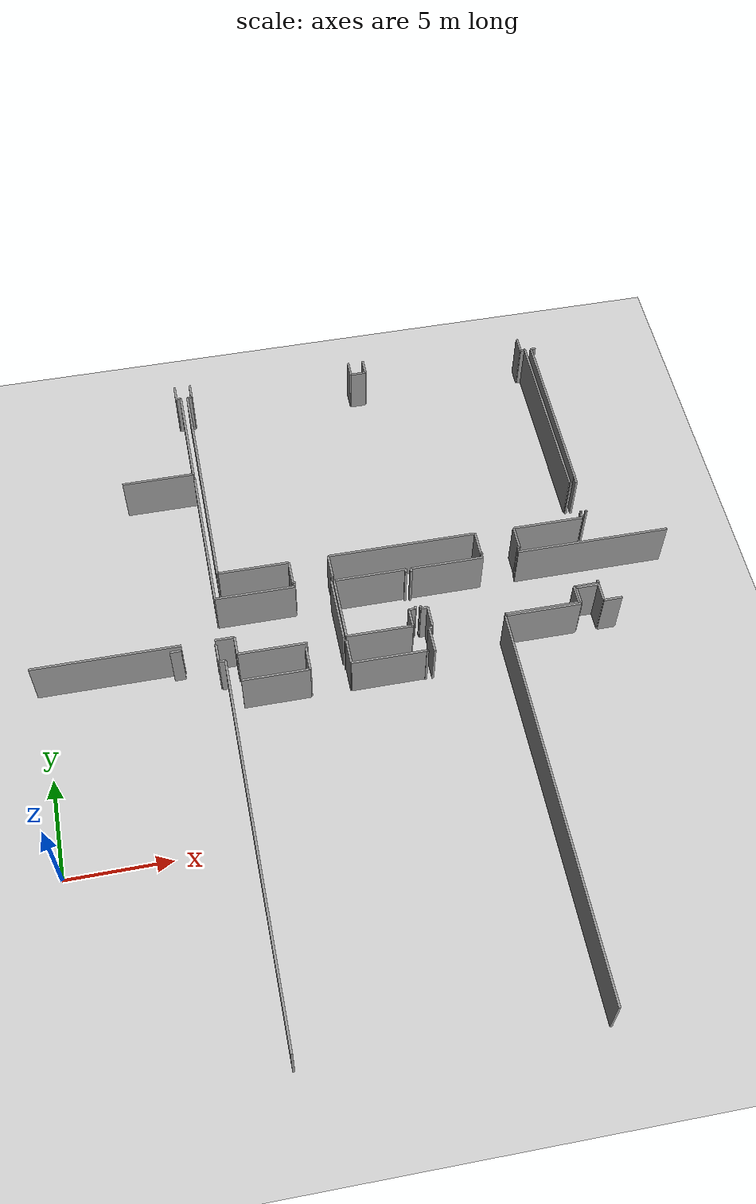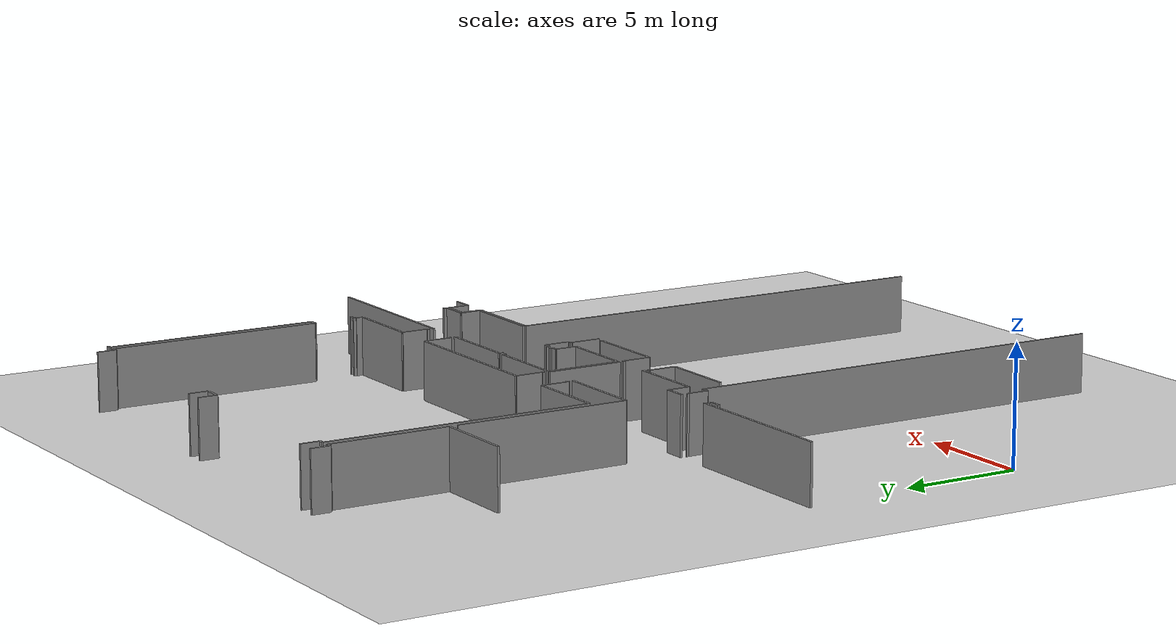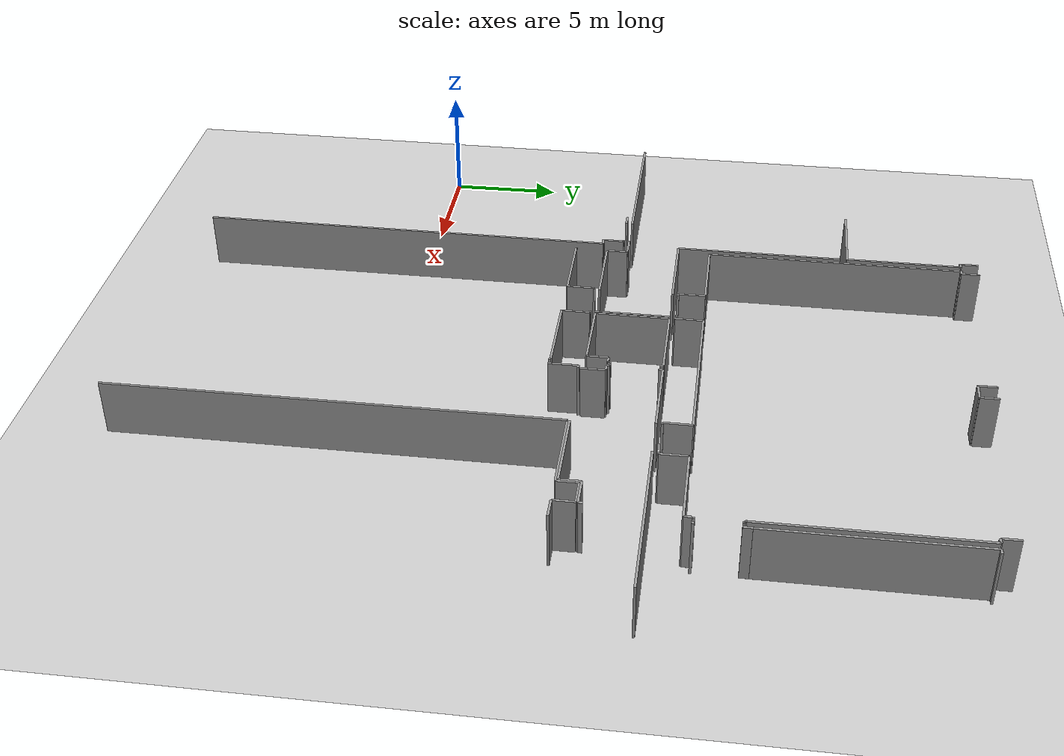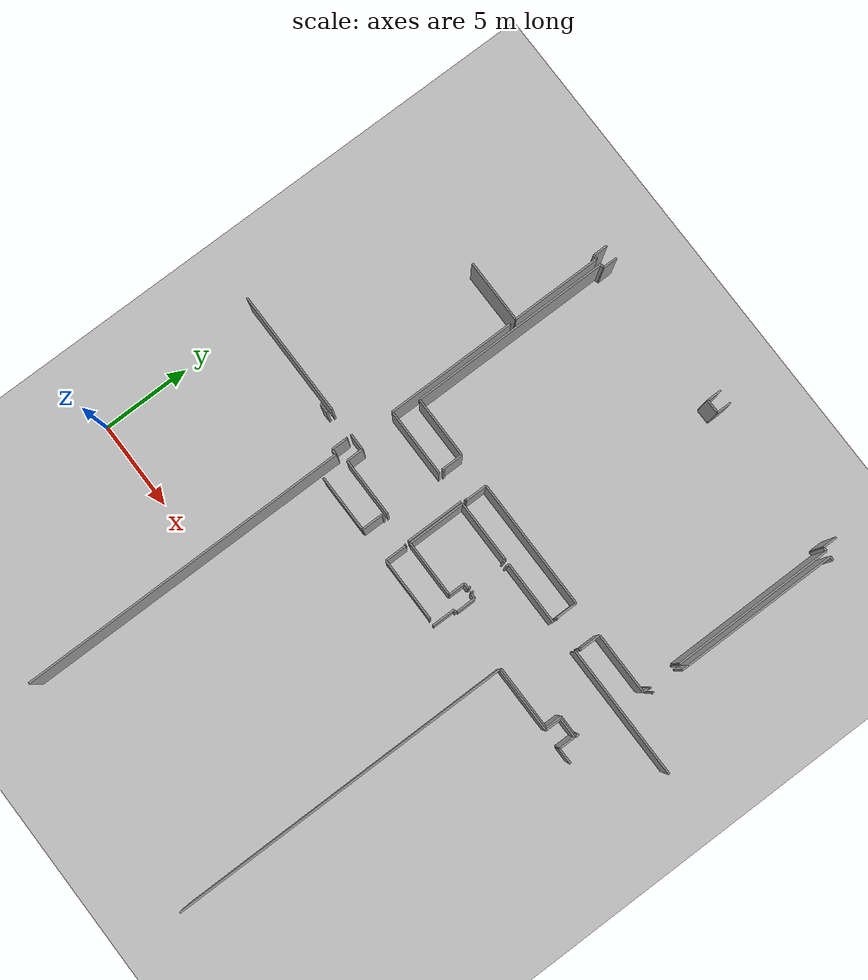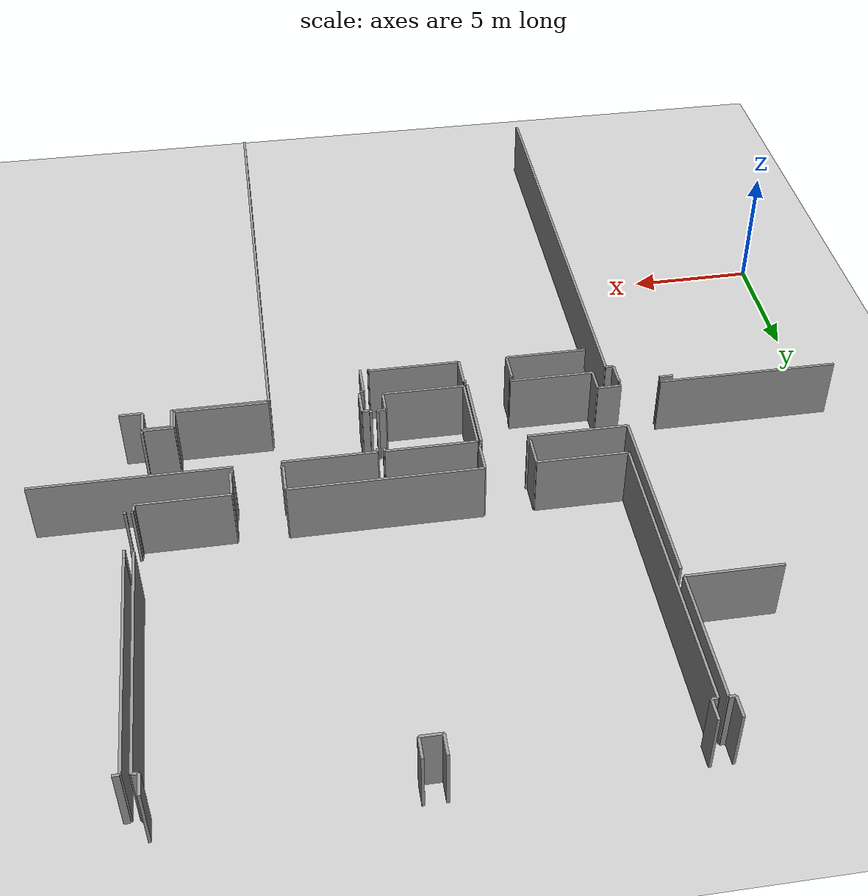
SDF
<sdf version="1.6">
 <world name="default">
  <model name="ground_plane">
   <static>1</static>
   <link name="link">
    <collision name="collision">
     <geometry><plane><normal>0 0 1</normal><size>100 100</size></plane></geometry>
     <surface><friction><ode><mu>100</mu><mu2>50</mu2></ode></friction></surface>
    </collision>
    <visual name="visual">
     <cast_shadows>0</cast_shadows>
     <geometry><plane><normal>0 0 1</normal><size>100 100</size></plane></geometry>
     <material>
      <script><uri>file://media/materials/scripts/gazebo.material</uri><name>Gazebo/Grey</name></script>
     </material>
    </visual>
   </link>
  </model>
  <model name="50045368">
   <static>1</static>
   <link name="Wall_185">
    <collision name="Wall_185_Collision">
     <geometry><box><size>7.38195679797 0.1 2.5</size></box></geometry>
     <pose>3.69097839898 0 1.25 0 0 0</pose>
    </collision>
    <visual name="Wall_185_Visual">
     <pose>3.69097839898 0 1.25 0 0 0</pose>
     <geometry><box><size>7.38195679797 0.1 2.5</size></box></geometry>
     <material>
      <script><uri>file://media/materials/scripts/gazebo.material</uri><name>Gazebo/Grey</name></script>
      <ambient>1 1 1 1</ambient>
     </material>
    </visual>
    <pose>61.4377382465 -6.29110546379 0 0 0 -1.57079632679</pose>
   </link>
   <link name="Wall_186">
    <collision name="Wall_186_Collision">
     <geometry><box><size>3.87318932656 0.1 2.5</size></box></geometry>
     <pose>1.93659466328 0 1.25 0 0 0</pose>
    </collision>
    <visual name="Wall_186_Visual">
     <pose>1.93659466328 0 1.25 0 0 0</pose>
     <geometry><box><size>3.87318932656 0.1 2.5</size></box></geometry>
     <material>
      <script><uri>file://media/materials/scripts/gazebo.material</uri><name>Gazebo/Grey</name></script>
      <ambient>1 1 1 1</ambient>
     </material>
    </visual>
    <pose>61.4377382465 -13.6730622618 0 0 0 0.0</pose>
   </link>
   <link name="Wall_187">
    <collision name="Wall_187_Collision">
     <geometry><box><size>3.26124523507 0.1 2.5</size></box></geometry>
     <pose>1.63062261753 0 1.25 0 0 0</pose>
    </collision>
    <visual name="Wall_187_Visual">
     <pose>1.63062261753 0 1.25 0 0 0</pose>
     <geometry><box><size>3.26124523507 0.1 2.5</size></box></geometry>
     <material>
      <script><uri>file://media/materials/scripts/gazebo.material</uri><name>Gazebo/Grey</name></script>
      <ambient>1 1 1 1</ambient>
     </material>
    </visual>
    <pose>67.0796696315 -13.6730622618 0 0 0 -1.57079632679</pose>
   </link>
   <link name="Wall_188">
    <collision name="Wall_188_Collision">
     <geometry><box><size>3.30559085133 0.1 2.5</size></box></geometry>
     <pose>1.65279542567 0 1.25 0 0 0</pose>
    </collision>
    <visual name="Wall_188_Visual">
     <pose>1.65279542567 0 1.25 0 0 0</pose>
     <geometry><box><size>3.30559085133 0.1 2.5</size></box></geometry>
     <material>
      <script><uri>file://media/materials/scripts/gazebo.material</uri><name>Gazebo/Grey</name></script>
      <ambient>1 1 1 1</ambient>
     </material>
    </visual>
    <pose>65.3545108005 -16.9343074968 0 0 0 3.14159265359</pose>
   </link>
   <link name="Wall_189">
    <collision name="Wall_189_Collision">
     <geometry><box><size>0.943710292249 0.1 2.5</size></box></geometry>
     <pose>0.471855146125 0 1.25 0 0 0</pose>
    </collision>
    <visual name="Wall_189_Visual">
     <pose>0.471855146125 0 1.25 0 0 0</pose>
     <geometry><box><size>0.943710292249 0.1 2.5</size></box></geometry>
     <material>
      <script><uri>file://media/materials/scripts/gazebo.material</uri><name>Gazebo/Grey</name></script>
      <ambient>1 1 1 1</ambient>
     </material>
    </visual>
    <pose>62.0489199492 -16.9343074968 0 0 0 1.57079632679</pose>
   </link>
   <link name="Wall_190">
    <collision name="Wall_190_Collision">
     <geometry><box><size>0.93710292249 0.1 2.5</size></box></geometry>
     <pose>0.468551461245 0 1.25 0 0 0</pose>
    </collision>
    <visual name="Wall_190_Visual">
     <pose>0.468551461245 0 1.25 0 0 0</pose>
     <geometry><box><size>0.93710292249 0.1 2.5</size></box></geometry>
     <material>
      <script><uri>file://media/materials/scripts/gazebo.material</uri><name>Gazebo/Grey</name></script>
      <ambient>1 1 1 1</ambient>
     </material>
    </visual>
    <pose>62.0489199492 -15.9905972046 0 0 0 3.14159265359</pose>
   </link>
   <link name="Wall_191">
    <collision name="Wall_191_Collision">
     <geometry><box><size>7.10381194409 0.1 2.5</size></box></geometry>
     <pose>3.55190597205 0 1.25 0 0 0</pose>
    </collision>
    <visual name="Wall_191_Visual">
     <pose>3.55190597205 0 1.25 0 0 0</pose>
     <geometry><box><size>7.10381194409 0.1 2.5</size></box></geometry>
     <material>
      <script><uri>file://media/materials/scripts/gazebo.material</uri><name>Gazebo/Grey</name></script>
      <ambient>1 1 1 1</ambient>
     </material>
    </visual>
    <pose>59.5364675985 -15.9905972046 0 0 0 3.14159265359</pose>
   </link>
   <link name="Wall_198">
    <collision name="Wall_198_Collision">
     <geometry><box><size>0.817534942821 0.1 2.5</size></box></geometry>
     <pose>0.40876747141 0 1.25 0 0 0</pose>
    </collision>
    <visual name="Wall_198_Visual">
     <pose>0.40876747141 0 1.25 0 0 0</pose>
     <geometry><box><size>0.817534942821 0.1 2.5</size></box></geometry>
     <material>
      <script><uri>file://media/materials/scripts/gazebo.material</uri><name>Gazebo/Grey</name></script>
      <ambient>1 1 1 1</ambient>
     </material>
    </visual>
    <pose>61.1850063532 -0.00851334180432 0 0 0 -1.57079632679</pose>
   </link>
   <link name="Wall_199">
    <collision name="Wall_199_Collision">
     <geometry><box><size>0.231003811944 0.1 2.5</size></box></geometry>
     <pose>0.115501905972 0 1.25 0 0 0</pose>
    </collision>
    <visual name="Wall_199_Visual">
     <pose>0.115501905972 0 1.25 0 0 0</pose>
     <geometry><box><size>0.231003811944 0.1 2.5</size></box></geometry>
     <material>
      <script><uri>file://media/materials/scripts/gazebo.material</uri><name>Gazebo/Grey</name></script>
      <ambient>1 1 1 1</ambient>
     </material>
    </visual>
    <pose>61.1850063532 -0.826048284625 0 0 0 0.0</pose>
   </link>
   <link name="Wall_200">
    <collision name="Wall_200_Collision">
     <geometry><box><size>5.11207115629 0.1 2.5</size></box></geometry>
     <pose>2.55603557814 0 1.25 0 0 0</pose>
    </collision>
    <visual name="Wall_200_Visual">
     <pose>2.55603557814 0 1.25 0 0 0</pose>
     <geometry><box><size>5.11207115629 0.1 2.5</size></box></geometry>
     <material>
      <script><uri>file://media/materials/scripts/gazebo.material</uri><name>Gazebo/Grey</name></script>
      <ambient>1 1 1 1</ambient>
     </material>
    </visual>
    <pose>61.4160101652 -0.826048284625 0 0 0 -1.57079632679</pose>
   </link>
   <link name="Wall_201">
    <collision name="Wall_201_Collision">
     <geometry><box><size>3.57560355781 0.1 2.5</size></box></geometry>
     <pose>1.78780177891 0 1.25 0 0 0</pose>
    </collision>
    <visual name="Wall_201_Visual">
     <pose>1.78780177891 0 1.25 0 0 0</pose>
     <geometry><box><size>3.57560355781 0.1 2.5</size></box></geometry>
     <material>
      <script><uri>file://media/materials/scripts/gazebo.material</uri><name>Gazebo/Grey</name></script>
      <ambient>1 1 1 1</ambient>
     </material>
    </visual>
    <pose>61.4160101652 -5.93811944091 0 0 0 3.14159265359</pose>
   </link>
   <link name="Wall_210">
    <collision name="Wall_210_Collision">
     <geometry><box><size>0.543202033037 0.1 2.5</size></box></geometry>
     <pose>0.271601016518 0 1.25 0 0 0</pose>
    </collision>
    <visual name="Wall_210_Visual">
     <pose>0.271601016518 0 1.25 0 0 0</pose>
     <geometry><box><size>0.543202033037 0.1 2.5</size></box></geometry>
     <material>
      <script><uri>file://media/materials/scripts/gazebo.material</uri><name>Gazebo/Grey</name></script>
      <ambient>1 1 1 1</ambient>
     </material>
    </visual>
    <pose>58.9613722999 -16.2711562897 0 0 0 0.0</pose>
   </link>
   <link name="Wall_211">
    <collision name="Wall_211_Collision">
     <geometry><box><size>0.0658195679797 0.1 2.5</size></box></geometry>
     <pose>0.0329097839898 0 1.25 0 0 0</pose>
    </collision>
    <visual name="Wall_211_Visual">
     <pose>0.0329097839898 0 1.25 0 0 0</pose>
     <geometry><box><size>0.0658195679797 0.1 2.5</size></box></geometry>
     <material>
      <script><uri>file://media/materials/scripts/gazebo.material</uri><name>Gazebo/Grey</name></script>
      <ambient>1 1 1 1</ambient>
     </material>
    </visual>
    <pose>61.0752223634 -16.2711562897 0 0 0 0.0</pose>
   </link>
   <link name="Wall_212">
    <collision name="Wall_212_Collision">
     <geometry><box><size>0.919695044473 0.1 2.5</size></box></geometry>
     <pose>0.459847522236 0 1.25 0 0 0</pose>
    </collision>
    <visual name="Wall_212_Visual">
     <pose>0.459847522236 0 1.25 0 0 0</pose>
     <geometry><box><size>0.919695044473 0.1 2.5</size></box></geometry>
     <material>
      <script><uri>file://media/materials/scripts/gazebo.material</uri><name>Gazebo/Grey</name></script>
      <ambient>1 1 1 1</ambient>
     </material>
    </visual>
    <pose>61.1410419314 -16.2711562897 0 0 0 -1.57079632679</pose>
   </link>
   <link name="Wall_213">
    <collision name="Wall_213_Collision">
     <geometry><box><size>0.315374841169 0.1 2.5</size></box></geometry>
     <pose>0.157687420584 0 1.25 0 0 0</pose>
    </collision>
    <visual name="Wall_213_Visual">
     <pose>0.157687420584 0 1.25 0 0 0</pose>
     <geometry><box><size>0.315374841169 0.1 2.5</size></box></geometry>
     <material>
      <script><uri>file://media/materials/scripts/gazebo.material</uri><name>Gazebo/Grey</name></script>
      <ambient>1 1 1 1</ambient>
     </material>
    </visual>
    <pose>61.1410419314 -17.1908513342 0 0 0 0.0</pose>
   </link>
   <link name="Wall_214">
    <collision name="Wall_214_Collision">
     <geometry><box><size>18.7362134689 0.1 2.5</size></box></geometry>
     <pose>9.36810673443 0 1.25 0 0 0</pose>
    </collision>
    <visual name="Wall_214_Visual">
     <pose>9.36810673443 0 1.25 0 0 0</pose>
     <geometry><box><size>18.7362134689 0.1 2.5</size></box></geometry>
     <material>
      <script><uri>file://media/materials/scripts/gazebo.material</uri><name>Gazebo/Grey</name></script>
      <ambient>1 1 1 1</ambient>
     </material>
    </visual>
    <pose>61.4564167726 -17.1908513342 0 0 0 -1.57079632679</pose>
   </link>
   <link name="Wall_220">
    <collision name="Wall_220_Collision">
     <geometry><box><size>3.22744599746 0.1 2.5</size></box></geometry>
     <pose>1.61372299873 0 1.25 0 0 0</pose>
    </collision>
    <visual name="Wall_220_Visual">
     <pose>1.61372299873 0 1.25 0 0 0</pose>
     <geometry><box><size>3.22744599746 0.1 2.5</size></box></geometry>
     <material>
      <script><uri>file://media/materials/scripts/gazebo.material</uri><name>Gazebo/Grey</name></script>
      <ambient>1 1 1 1</ambient>
     </material>
    </visual>
    <pose>62.0162642948 -18.3811944091 0 0 0 0.0</pose>
   </link>
   <link name="Wall_221">
    <collision name="Wall_221_Collision">
     <geometry><box><size>1.21283354511 0.1 2.5</size></box></geometry>
     <pose>0.606416772554 0 1.25 0 0 0</pose>
    </collision>
    <visual name="Wall_221_Visual">
     <pose>0.606416772554 0 1.25 0 0 0</pose>
     <geometry><box><size>1.21283354511 0.1 2.5</size></box></geometry>
     <material>
      <script><uri>file://media/materials/scripts/gazebo.material</uri><name>Gazebo/Grey</name></script>
      <ambient>1 1 1 1</ambient>
     </material>
    </visual>
    <pose>65.2437102922 -18.3811944091 0 0 0 1.57079632679</pose>
   </link>
   <link name="Wall_222">
    <collision name="Wall_222_Collision">
     <geometry><box><size>0.0955527318933 0.1 2.5</size></box></geometry>
     <pose>0.0477763659466 0 1.25 0 0 0</pose>
    </collision>
    <visual name="Wall_222_Visual">
     <pose>0.0477763659466 0 1.25 0 0 0</pose>
     <geometry><box><size>0.0955527318933 0.1 2.5</size></box></geometry>
     <material>
      <script><uri>file://media/materials/scripts/gazebo.material</uri><name>Gazebo/Grey</name></script>
      <ambient>1 1 1 1</ambient>
     </material>
    </visual>
    <pose>65.2437102922 -17.168360864 0 0 0 0.0</pose>
   </link>
   <link name="Wall_223">
    <collision name="Wall_223_Collision">
     <geometry><box><size>0.0983481575604 0.1 2.5</size></box></geometry>
     <pose>0.0491740787802 0 1.25 0 0 0</pose>
    </collision>
    <visual name="Wall_223_Visual">
     <pose>0.0491740787802 0 1.25 0 0 0</pose>
     <geometry><box><size>0.0983481575604 0.1 2.5</size></box></geometry>
     <material>
      <script><uri>file://media/materials/scripts/gazebo.material</uri><name>Gazebo/Grey</name></script>
      <ambient>1 1 1 1</ambient>
     </material>
    </visual>
    <pose>67.0744599746 -17.168360864 0 0 0 0.0</pose>
   </link>
   <link name="Wall_224">
    <collision name="Wall_224_Collision">
     <geometry><box><size>1.22287166455 0.1 2.5</size></box></geometry>
     <pose>0.611435832274 0 1.25 0 0 0</pose>
    </collision>
    <visual name="Wall_224_Visual">
     <pose>0.611435832274 0 1.25 0 0 0</pose>
     <geometry><box><size>1.22287166455 0.1 2.5</size></box></geometry>
     <material>
      <script><uri>file://media/materials/scripts/gazebo.material</uri><name>Gazebo/Grey</name></script>
      <ambient>1 1 1 1</ambient>
     </material>
    </visual>
    <pose>67.1728081321 -17.168360864 0 0 0 -1.57079632679</pose>
   </link>
   <link name="Wall_225">
    <collision name="Wall_225_Collision">
     <geometry><box><size>3.61207115629 0.1 2.5</size></box></geometry>
     <pose>1.80603557814 0 1.25 0 0 0</pose>
    </collision>
    <visual name="Wall_225_Visual">
     <pose>1.80603557814 0 1.25 0 0 0</pose>
     <geometry><box><size>3.61207115629 0.1 2.5</size></box></geometry>
     <material>
      <script><uri>file://media/materials/scripts/gazebo.material</uri><name>Gazebo/Grey</name></script>
      <ambient>1 1 1 1</ambient>
     </material>
    </visual>
    <pose>67.1728081321 -18.3912325286 0 0 0 0.0</pose>
   </link>
   <link name="Wall_226">
    <collision name="Wall_226_Collision">
     <geometry><box><size>0.0772554002541 0.1 2.5</size></box></geometry>
     <pose>0.0386277001271 0 1.25 0 0 0</pose>
    </collision>
    <visual name="Wall_226_Visual">
     <pose>0.0386277001271 0 1.25 0 0 0</pose>
     <geometry><box><size>0.0772554002541 0.1 2.5</size></box></geometry>
     <material>
      <script><uri>file://media/materials/scripts/gazebo.material</uri><name>Gazebo/Grey</name></script>
      <ambient>1 1 1 1</ambient>
     </material>
    </visual>
    <pose>70.7848792884 -18.3912325286 0 0 0 -1.57079632679</pose>
   </link>
   <link name="Wall_234">
    <collision name="Wall_234_Collision">
     <geometry><box><size>0.0315120711563 0.1 2.5</size></box></geometry>
     <pose>0.0157560355781 0 1.25 0 0 0</pose>
    </collision>
    <visual name="Wall_234_Visual">
     <pose>0.0157560355781 0 1.25 0 0 0</pose>
     <geometry><box><size>0.0315120711563 0.1 2.5</size></box></geometry>
     <material>
      <script><uri>file://media/materials/scripts/gazebo.material</uri><name>Gazebo/Grey</name></script>
      <ambient>1 1 1 1</ambient>
     </material>
    </visual>
    <pose>61.7945362135 -12.2219822109 0 0 0 3.14159265359</pose>
   </link>
   <link name="Wall_235">
    <collision name="Wall_235_Collision">
     <geometry><box><size>11.3945362135 0.1 2.5</size></box></geometry>
     <pose>5.69726810673 0 1.25 0 0 0</pose>
    </collision>
    <visual name="Wall_235_Visual">
     <pose>5.69726810673 0 1.25 0 0 0</pose>
     <geometry><box><size>11.3945362135 0.1 2.5</size></box></geometry>
     <material>
      <script><uri>file://media/materials/scripts/gazebo.material</uri><name>Gazebo/Grey</name></script>
      <ambient>1 1 1 1</ambient>
     </material>
    </visual>
    <pose>61.7630241423 -12.2219822109 0 0 0 1.57079632679</pose>
   </link>
   <link name="Wall_236">
    <collision name="Wall_236_Collision">
     <geometry><box><size>0.219949174079 0.1 2.5</size></box></geometry>
     <pose>0.109974587039 0 1.25 0 0 0</pose>
    </collision>
    <visual name="Wall_236_Visual">
     <pose>0.109974587039 0 1.25 0 0 0</pose>
     <geometry><box><size>0.219949174079 0.1 2.5</size></box></geometry>
     <material>
      <script><uri>file://media/materials/scripts/gazebo.material</uri><name>Gazebo/Grey</name></script>
      <ambient>1 1 1 1</ambient>
     </material>
    </visual>
    <pose>61.7630241423 -0.827445997459 0 0 0 0.0</pose>
   </link>
   <link name="Wall_237">
    <collision name="Wall_237_Collision">
     <geometry><box><size>0.822363405337 0.1 2.5</size></box></geometry>
     <pose>0.411181702668 0 1.25 0 0 0</pose>
    </collision>
    <visual name="Wall_237_Visual">
     <pose>0.411181702668 0 1.25 0 0 0</pose>
     <geometry><box><size>0.822363405337 0.1 2.5</size></box></geometry>
     <material>
      <script><uri>file://media/materials/scripts/gazebo.material</uri><name>Gazebo/Grey</name></script>
      <ambient>1 1 1 1</ambient>
     </material>
    </visual>
    <pose>61.9829733164 -0.827445997459 0 0 0 1.57079632679</pose>
   </link>
   <link name="Wall_238">
    <collision name="Wall_238_Collision">
     <geometry><box><size>0.814104193138 0.1 2.5</size></box></geometry>
     <pose>0.407052096569 0 1.25 0 0 0</pose>
    </collision>
    <visual name="Wall_238_Visual">
     <pose>0.407052096569 0 1.25 0 0 0</pose>
     <geometry><box><size>0.814104193138 0.1 2.5</size></box></geometry>
     <material>
      <script><uri>file://media/materials/scripts/gazebo.material</uri><name>Gazebo/Grey</name></script>
      <ambient>1 1 1 1</ambient>
     </material>
    </visual>
    <pose>70.4462515883 -0.00508259212198 0 0 0 -1.57079632679</pose>
   </link>
   <link name="Wall_239">
    <collision name="Wall_239_Collision">
     <geometry><box><size>0.782973316391 0.1 2.5</size></box></geometry>
     <pose>0.391486658196 0 1.25 0 0 0</pose>
    </collision>
    <visual name="Wall_239_Visual">
     <pose>0.391486658196 0 1.25 0 0 0</pose>
     <geometry><box><size>0.782973316391 0.1 2.5</size></box></geometry>
     <material>
      <script><uri>file://media/materials/scripts/gazebo.material</uri><name>Gazebo/Grey</name></script>
      <ambient>1 1 1 1</ambient>
     </material>
    </visual>
    <pose>70.4462515883 -0.81918678526 0 0 0 0.0</pose>
   </link>
   <link name="Wall_240">
    <collision name="Wall_240_Collision">
     <geometry><box><size>0.818297331639 0.1 2.5</size></box></geometry>
     <pose>0.40914866582 0 1.25 0 0 0</pose>
    </collision>
    <visual name="Wall_240_Visual">
     <pose>0.40914866582 0 1.25 0 0 0</pose>
     <geometry><box><size>0.818297331639 0.1 2.5</size></box></geometry>
     <material>
      <script><uri>file://media/materials/scripts/gazebo.material</uri><name>Gazebo/Grey</name></script>
      <ambient>1 1 1 1</ambient>
     </material>
    </visual>
    <pose>71.2292249047 -0.81918678526 0 0 0 1.57079632679</pose>
   </link>
   <link name="Wall_241">
    <collision name="Wall_241_Collision">
     <geometry><box><size>0.803049555273 0.1 2.5</size></box></geometry>
     <pose>0.401524777637 0 1.25 0 0 0</pose>
    </collision>
    <visual name="Wall_241_Visual">
     <pose>0.401524777637 0 1.25 0 0 0</pose>
     <geometry><box><size>0.803049555273 0.1 2.5</size></box></geometry>
     <material>
      <script><uri>file://media/materials/scripts/gazebo.material</uri><name>Gazebo/Grey</name></script>
      <ambient>1 1 1 1</ambient>
     </material>
    </visual>
    <pose>79.6665819568 -0.000889453621348 0 0 0 -1.57079632679</pose>
   </link>
   <link name="Wall_242">
    <collision name="Wall_242_Collision">
     <geometry><box><size>0.239390088945 0.1 2.5</size></box></geometry>
     <pose>0.119695044473 0 1.25 0 0 0</pose>
    </collision>
    <visual name="Wall_242_Visual">
     <pose>0.119695044473 0 1.25 0 0 0</pose>
     <geometry><box><size>0.239390088945 0.1 2.5</size></box></geometry>
     <material>
      <script><uri>file://media/materials/scripts/gazebo.material</uri><name>Gazebo/Grey</name></script>
      <ambient>1 1 1 1</ambient>
     </material>
    </visual>
    <pose>79.6665819568 -0.803939008895 0 0 0 0.0</pose>
   </link>
   <link name="Wall_243">
    <collision name="Wall_243_Collision">
     <geometry><box><size>9.16632782719 0.1 2.5</size></box></geometry>
     <pose>4.5831639136 0 1.25 0 0 0</pose>
    </collision>
    <visual name="Wall_243_Visual">
     <pose>4.5831639136 0 1.25 0 0 0</pose>
     <geometry><box><size>9.16632782719 0.1 2.5</size></box></geometry>
     <material>
      <script><uri>file://media/materials/scripts/gazebo.material</uri><name>Gazebo/Grey</name></script>
      <ambient>1 1 1 1</ambient>
     </material>
    </visual>
    <pose>79.9059720457 -0.803939008895 0 0 0 -1.57079632679</pose>
   </link>
   <link name="Wall_244">
    <collision name="Wall_244_Collision">
     <geometry><box><size>0.0595933926302 0.1 2.5</size></box></geometry>
     <pose>0.0297966963151 0 1.25 0 0 0</pose>
    </collision>
    <visual name="Wall_244_Visual">
     <pose>0.0297966963151 0 1.25 0 0 0</pose>
     <geometry><box><size>0.0595933926302 0.1 2.5</size></box></geometry>
     <material>
      <script><uri>file://media/materials/scripts/gazebo.material</uri><name>Gazebo/Grey</name></script>
      <ambient>1 1 1 1</ambient>
     </material>
    </visual>
    <pose>79.9059720457 -9.97026683609 0 0 0 0.0</pose>
   </link>
   <link name="Wall_245">
    <collision name="Wall_245_Collision">
     <geometry><box><size>0.0939008894536 0.1 2.5</size></box></geometry>
     <pose>0.0469504447268 0 1.25 0 0 0</pose>
    </collision>
    <visual name="Wall_245_Visual">
     <pose>0.0469504447268 0 1.25 0 0 0</pose>
     <geometry><box><size>0.0939008894536 0.1 2.5</size></box></geometry>
     <material>
      <script><uri>file://media/materials/scripts/gazebo.material</uri><name>Gazebo/Grey</name></script>
      <ambient>1 1 1 1</ambient>
     </material>
    </visual>
    <pose>79.9655654384 -9.97026683609 0 0 0 -1.57079632679</pose>
   </link>
   <link name="Wall_246">
    <collision name="Wall_246_Collision">
     <geometry><box><size>0.119440914867 0.1 2.5</size></box></geometry>
     <pose>0.0597204574333 0 1.25 0 0 0</pose>
    </collision>
    <visual name="Wall_246_Visual">
     <pose>0.0597204574333 0 1.25 0 0 0</pose>
     <geometry><box><size>0.119440914867 0.1 2.5</size></box></geometry>
     <material>
      <script><uri>file://media/materials/scripts/gazebo.material</uri><name>Gazebo/Grey</name></script>
      <ambient>1 1 1 1</ambient>
     </material>
    </visual>
    <pose>79.9655654384 -11.8135959339 0 0 0 -1.57079632679</pose>
   </link>
   <link name="Wall_247">
    <collision name="Wall_247_Collision">
     <geometry><box><size>0.0457433290978 0.1 2.5</size></box></geometry>
     <pose>0.0228716645489 0 1.25 0 0 0</pose>
    </collision>
    <visual name="Wall_247_Visual">
     <pose>0.0228716645489 0 1.25 0 0 0</pose>
     <geometry><box><size>0.0457433290978 0.1 2.5</size></box></geometry>
     <material>
      <script><uri>file://media/materials/scripts/gazebo.material</uri><name>Gazebo/Grey</name></script>
      <ambient>1 1 1 1</ambient>
     </material>
    </visual>
    <pose>79.9655654384 -11.9330368488 0 0 0 3.14159265359</pose>
   </link>
   <link name="Wall_248">
    <collision name="Wall_248_Collision">
     <geometry><box><size>0.309275730623 0.1 2.5</size></box></geometry>
     <pose>0.154637865311 0 1.25 0 0 0</pose>
    </collision>
    <visual name="Wall_248_Visual">
     <pose>0.154637865311 0 1.25 0 0 0</pose>
     <geometry><box><size>0.309275730623 0.1 2.5</size></box></geometry>
     <material>
      <script><uri>file://media/materials/scripts/gazebo.material</uri><name>Gazebo/Grey</name></script>
      <ambient>1 1 1 1</ambient>
     </material>
    </visual>
    <pose>79.9198221093 -11.9330368488 0 0 0 -1.57079632679</pose>
   </link>
   <link name="Wall_249">
    <collision name="Wall_249_Collision">
     <geometry><box><size>3.47750952986 0.1 2.5</size></box></geometry>
     <pose>1.73875476493 0 1.25 0 0 0</pose>
    </collision>
    <visual name="Wall_249_Visual">
     <pose>1.73875476493 0 1.25 0 0 0</pose>
     <geometry><box><size>3.47750952986 0.1 2.5</size></box></geometry>
     <material>
      <script><uri>file://media/materials/scripts/gazebo.material</uri><name>Gazebo/Grey</name></script>
      <ambient>1 1 1 1</ambient>
     </material>
    </visual>
    <pose>79.9198221093 -12.2423125794 0 0 0 3.14159265359</pose>
   </link>
   <link name="Wall_250">
    <collision name="Wall_250_Collision">
     <geometry><box><size>1.18106734435 0.1 2.5</size></box></geometry>
     <pose>0.590533672173 0 1.25 0 0 0</pose>
    </collision>
    <visual name="Wall_250_Visual">
     <pose>0.590533672173 0 1.25 0 0 0</pose>
     <geometry><box><size>1.18106734435 0.1 2.5</size></box></geometry>
     <material>
      <script><uri>file://media/materials/scripts/gazebo.material</uri><name>Gazebo/Grey</name></script>
      <ambient>1 1 1 1</ambient>
     </material>
    </visual>
    <pose>76.4423125794 -12.2423125794 0 0 0 -1.57079632679</pose>
   </link>
   <link name="Wall_251">
    <collision name="Wall_251_Collision">
     <geometry><box><size>0.103176620076 0.1 2.5</size></box></geometry>
     <pose>0.0515883100381 0 1.25 0 0 0</pose>
    </collision>
    <visual name="Wall_251_Visual">
     <pose>0.0515883100381 0 1.25 0 0 0</pose>
     <geometry><box><size>0.103176620076 0.1 2.5</size></box></geometry>
     <material>
      <script><uri>file://media/materials/scripts/gazebo.material</uri><name>Gazebo/Grey</name></script>
      <ambient>1 1 1 1</ambient>
     </material>
    </visual>
    <pose>76.4423125794 -13.4233799238 0 0 0 3.14159265359</pose>
   </link>
   <link name="Wall_252">
    <collision name="Wall_252_Collision">
     <geometry><box><size>0.100254129606 0.1 2.5</size></box></geometry>
     <pose>0.050127064803 0 1.25 0 0 0</pose>
    </collision>
    <visual name="Wall_252_Visual">
     <pose>0.050127064803 0 1.25 0 0 0</pose>
     <geometry><box><size>0.100254129606 0.1 2.5</size></box></geometry>
     <material>
      <script><uri>file://media/materials/scripts/gazebo.material</uri><name>Gazebo/Grey</name></script>
      <ambient>1 1 1 1</ambient>
     </material>
    </visual>
    <pose>74.6031766201 -13.4233799238 0 0 0 3.14159265359</pose>
   </link>
   <link name="Wall_253">
    <collision name="Wall_253_Collision">
     <geometry><box><size>1.21728081321 0.1 2.5</size></box></geometry>
     <pose>0.608640406607 0 1.25 0 0 0</pose>
    </collision>
    <visual name="Wall_253_Visual">
     <pose>0.608640406607 0 1.25 0 0 0</pose>
     <geometry><box><size>1.21728081321 0.1 2.5</size></box></geometry>
     <material>
      <script><uri>file://media/materials/scripts/gazebo.material</uri><name>Gazebo/Grey</name></script>
      <ambient>1 1 1 1</ambient>
     </material>
    </visual>
    <pose>74.5029224905 -13.4233799238 0 0 0 1.57079632679</pose>
   </link>
   <link name="Wall_254">
    <collision name="Wall_254_Collision">
     <geometry><box><size>7.31550190597 0.1 2.5</size></box></geometry>
     <pose>3.65775095299 0 1.25 0 0 0</pose>
    </collision>
    <visual name="Wall_254_Visual">
     <pose>3.65775095299 0 1.25 0 0 0</pose>
     <geometry><box><size>7.31550190597 0.1 2.5</size></box></geometry>
     <material>
      <script><uri>file://media/materials/scripts/gazebo.material</uri><name>Gazebo/Grey</name></script>
      <ambient>1 1 1 1</ambient>
     </material>
    </visual>
    <pose>74.5029224905 -12.2060991105 0 0 0 3.14159265359</pose>
   </link>
   <link name="Wall_255">
    <collision name="Wall_255_Collision">
     <geometry><box><size>1.22388818297 0.1 2.5</size></box></geometry>
     <pose>0.611944091487 0 1.25 0 0 0</pose>
    </collision>
    <visual name="Wall_255_Visual">
     <pose>0.611944091487 0 1.25 0 0 0</pose>
     <geometry><box><size>1.22388818297 0.1 2.5</size></box></geometry>
     <material>
      <script><uri>file://media/materials/scripts/gazebo.material</uri><name>Gazebo/Grey</name></script>
      <ambient>1 1 1 1</ambient>
     </material>
    </visual>
    <pose>67.1874205845 -12.2060991105 0 0 0 -1.57079632679</pose>
   </link>
   <link name="Wall_256">
    <collision name="Wall_256_Collision">
     <geometry><box><size>0.0911054637865 0.1 2.5</size></box></geometry>
     <pose>0.0455527318933 0 1.25 0 0 0</pose>
    </collision>
    <visual name="Wall_256_Visual">
     <pose>0.0455527318933 0 1.25 0 0 0</pose>
     <geometry><box><size>0.0911054637865 0.1 2.5</size></box></geometry>
     <material>
      <script><uri>file://media/materials/scripts/gazebo.material</uri><name>Gazebo/Grey</name></script>
      <ambient>1 1 1 1</ambient>
     </material>
    </visual>
    <pose>67.1874205845 -13.4299872935 0 0 0 3.14159265359</pose>
   </link>
   <link name="Wall_257">
    <collision name="Wall_257_Collision">
     <geometry><box><size>0.119313850064 0.1 2.5</size></box></geometry>
     <pose>0.0596569250318 0 1.25 0 0 0</pose>
    </collision>
    <visual name="Wall_257_Visual">
     <pose>0.0596569250318 0 1.25 0 0 0</pose>
     <geometry><box><size>0.119313850064 0.1 2.5</size></box></geometry>
     <material>
      <script><uri>file://media/materials/scripts/gazebo.material</uri><name>Gazebo/Grey</name></script>
      <ambient>1 1 1 1</ambient>
     </material>
    </visual>
    <pose>65.3695044473 -13.4299872935 0 0 0 3.14159265359</pose>
   </link>
   <link name="Wall_258">
    <collision name="Wall_258_Collision">
     <geometry><box><size>1.20254129606 0.1 2.5</size></box></geometry>
     <pose>0.60127064803 0 1.25 0 0 0</pose>
    </collision>
    <visual name="Wall_258_Visual">
     <pose>0.60127064803 0 1.25 0 0 0</pose>
     <geometry><box><size>1.20254129606 0.1 2.5</size></box></geometry>
     <material>
      <script><uri>file://media/materials/scripts/gazebo.material</uri><name>Gazebo/Grey</name></script>
      <ambient>1 1 1 1</ambient>
     </material>
    </visual>
    <pose>65.2501905972 -13.4299872935 0 0 0 1.57079632679</pose>
   </link>
   <link name="Wall_259">
    <collision name="Wall_259_Collision">
     <geometry><box><size>3.45565870317 0.1 2.5</size></box></geometry>
     <pose>1.72782935159 0 1.25 0 0 0</pose>
    </collision>
    <visual name="Wall_259_Visual">
     <pose>1.72782935159 0 1.25 0 0 0</pose>
     <geometry><box><size>3.45565870317 0.1 2.5</size></box></geometry>
     <material>
      <script><uri>file://media/materials/scripts/gazebo.material</uri><name>Gazebo/Grey</name></script>
      <ambient>1 1 1 1</ambient>
     </material>
    </visual>
    <pose>65.2501905972 -12.2274459975 0 0 0 3.14001154004</pose>
   </link>
   <link name="Wall_260">
    <collision name="Wall_260_Collision">
     <geometry><box><size>3.23862770013 0.1 2.5</size></box></geometry>
     <pose>1.61931385006 0 1.25 0 0 0</pose>
    </collision>
    <visual name="Wall_260_Visual">
     <pose>1.61931385006 0 1.25 0 0 0</pose>
     <geometry><box><size>3.23862770013 0.1 2.5</size></box></geometry>
     <material>
      <script><uri>file://media/materials/scripts/gazebo.material</uri><name>Gazebo/Grey</name></script>
      <ambient>1 1 1 1</ambient>
     </material>
    </visual>
    <pose>67.2143583227 -16.9133418043 0 0 0 1.57079632679</pose>
   </link>
   <link name="Wall_261">
    <collision name="Wall_261_Collision">
     <geometry><box><size>3.50355781449 0.1 2.5</size></box></geometry>
     <pose>1.75177890724 0 1.25 0 0 0</pose>
    </collision>
    <visual name="Wall_261_Visual">
     <pose>1.75177890724 0 1.25 0 0 0</pose>
     <geometry><box><size>3.50355781449 0.1 2.5</size></box></geometry>
     <material>
      <script><uri>file://media/materials/scripts/gazebo.material</uri><name>Gazebo/Grey</name></script>
      <ambient>1 1 1 1</ambient>
     </material>
    </visual>
    <pose>67.2143583227 -13.6747141042 0 0 0 0.0</pose>
   </link>
   <link name="Wall_262">
    <collision name="Wall_262_Collision">
     <geometry><box><size>0.151588310038 0.1 2.5</size></box></geometry>
     <pose>0.0757941550191 0 1.25 0 0 0</pose>
    </collision>
    <visual name="Wall_262_Visual">
     <pose>0.0757941550191 0 1.25 0 0 0</pose>
     <geometry><box><size>0.151588310038 0.1 2.5</size></box></geometry>
     <material>
      <script><uri>file://media/materials/scripts/gazebo.material</uri><name>Gazebo/Grey</name></script>
      <ambient>1 1 1 1</ambient>
     </material>
    </visual>
    <pose>70.7179161372 -13.6747141042 0 0 0 -1.57079632679</pose>
   </link>
   <link name="Wall_263">
    <collision name="Wall_263_Collision">
     <geometry><box><size>0.133672172808 0.1 2.5</size></box></geometry>
     <pose>0.0668360864041 0 1.25 0 0 0</pose>
    </collision>
    <visual name="Wall_263_Visual">
     <pose>0.0668360864041 0 1.25 0 0 0</pose>
     <geometry><box><size>0.133672172808 0.1 2.5</size></box></geometry>
     <material>
      <script><uri>file://media/materials/scripts/gazebo.material</uri><name>Gazebo/Grey</name></script>
      <ambient>1 1 1 1</ambient>
     </material>
    </visual>
    <pose>70.7179161372 -15.8595933926 0 0 0 -1.57079632679</pose>
   </link>
   <link name="Wall_264">
    <collision name="Wall_264_Collision">
     <geometry><box><size>0.313595933926 0.1 2.5</size></box></geometry>
     <pose>0.156797966963 0 1.25 0 0 0</pose>
    </collision>
    <visual name="Wall_264_Visual">
     <pose>0.156797966963 0 1.25 0 0 0</pose>
     <geometry><box><size>0.313595933926 0.1 2.5</size></box></geometry>
     <material>
      <script><uri>file://media/materials/scripts/gazebo.material</uri><name>Gazebo/Grey</name></script>
      <ambient>1 1 1 1</ambient>
     </material>
    </visual>
    <pose>70.7179161372 -15.9932655654 0 0 0 3.14159265359</pose>
   </link>
   <link name="Wall_265">
    <collision name="Wall_265_Collision">
     <geometry><box><size>0.929351969504 0.1 2.5</size></box></geometry>
     <pose>0.464675984752 0 1.25 0 0 0</pose>
    </collision>
    <visual name="Wall_265_Visual">
     <pose>0.464675984752 0 1.25 0 0 0</pose>
     <geometry><box><size>0.929351969504 0.1 2.5</size></box></geometry>
     <material>
      <script><uri>file://media/materials/scripts/gazebo.material</uri><name>Gazebo/Grey</name></script>
      <ambient>1 1 1 1</ambient>
     </material>
    </visual>
    <pose>70.4043202033 -15.9932655654 0 0 0 -1.57079632679</pose>
   </link>
   <link name="Wall_266">
    <collision name="Wall_266_Collision">
     <geometry><box><size>3.18997536646 0.1 2.5</size></box></geometry>
     <pose>1.59498768323 0 1.25 0 0 0</pose>
    </collision>
    <visual name="Wall_266_Visual">
     <pose>1.59498768323 0 1.25 0 0 0</pose>
     <geometry><box><size>3.18997536646 0.1 2.5</size></box></geometry>
     <material>
      <script><uri>file://media/materials/scripts/gazebo.material</uri><name>Gazebo/Grey</name></script>
      <ambient>1 1 1 1</ambient>
     </material>
    </visual>
    <pose>70.4043202033 -16.9226175349 0 0 0 3.13868487449</pose>
   </link>
   <link name="Wall_268">
    <collision name="Wall_268_Collision">
     <geometry><box><size>1.29504447268 0.1 2.5</size></box></geometry>
     <pose>0.647522236341 0 1.25 0 0 0</pose>
    </collision>
    <visual name="Wall_268_Visual">
     <pose>0.647522236341 0 1.25 0 0 0</pose>
     <geometry><box><size>1.29504447268 0.1 2.5</size></box></geometry>
     <material>
      <script><uri>file://media/materials/scripts/gazebo.material</uri><name>Gazebo/Grey</name></script>
      <ambient>1 1 1 1</ambient>
     </material>
    </visual>
    <pose>71.127064803 -18.4758576874 0 0 0 1.57079632679</pose>
   </link>
   <link name="Wall_269">
    <collision name="Wall_269_Collision">
     <geometry><box><size>0.153113087675 0.1 2.5</size></box></geometry>
     <pose>0.0765565438374 0 1.25 0 0 0</pose>
    </collision>
    <visual name="Wall_269_Visual">
     <pose>0.0765565438374 0 1.25 0 0 0</pose>
     <geometry><box><size>0.153113087675 0.1 2.5</size></box></geometry>
     <material>
      <script><uri>file://media/materials/scripts/gazebo.material</uri><name>Gazebo/Grey</name></script>
      <ambient>1 1 1 1</ambient>
     </material>
    </visual>
    <pose>71.127064803 -17.1808132147 0 0 0 0.0</pose>
   </link>
   <link name="Wall_270">
    <collision name="Wall_270_Collision">
     <geometry><box><size>19.3672172808 0.1 2.5</size></box></geometry>
     <pose>9.68360864041 0 1.25 0 0 0</pose>
    </collision>
    <visual name="Wall_270_Visual">
     <pose>9.68360864041 0 1.25 0 0 0</pose>
     <geometry><box><size>19.3672172808 0.1 2.5</size></box></geometry>
     <material>
      <script><uri>file://media/materials/scripts/gazebo.material</uri><name>Gazebo/Grey</name></script>
      <ambient>1 1 1 1</ambient>
     </material>
    </visual>
    <pose>74.8134688691 -17.1808132147 0 0 0 -1.57079632679</pose>
   </link>
   <link name="Wall_274">
    <collision name="Wall_274_Collision">
     <geometry><box><size>8.85501905972 0.1 2.5</size></box></geometry>
     <pose>4.42750952986 0 1.25 0 0 0</pose>
    </collision>
    <visual name="Wall_274_Visual">
     <pose>4.42750952986 0 1.25 0 0 0</pose>
     <geometry><box><size>8.85501905972 0.1 2.5</size></box></geometry>
     <material>
      <script><uri>file://media/materials/scripts/gazebo.material</uri><name>Gazebo/Grey</name></script>
      <ambient>1 1 1 1</ambient>
     </material>
    </visual>
    <pose>80.2374841169 -9.68106734435 0 0 0 1.57079632679</pose>
   </link>
   <link name="Wall_275">
    <collision name="Wall_275_Collision">
     <geometry><box><size>0.237229987294 0.1 2.5</size></box></geometry>
     <pose>0.118614993647 0 1.25 0 0 0</pose>
    </collision>
    <visual name="Wall_275_Visual">
     <pose>0.118614993647 0 1.25 0 0 0</pose>
     <geometry><box><size>0.237229987294 0.1 2.5</size></box></geometry>
     <material>
      <script><uri>file://media/materials/scripts/gazebo.material</uri><name>Gazebo/Grey</name></script>
      <ambient>1 1 1 1</ambient>
     </material>
    </visual>
    <pose>80.2374841169 -0.826048284625 0 0 0 0.0</pose>
   </link>
   <link name="Wall_301">
    <collision name="Wall_301_Collision">
     <geometry><box><size>0.104701397713 0.1 2.5</size></box></geometry>
     <pose>0.0523506988564 0 1.25 0 0 0</pose>
    </collision>
    <visual name="Wall_301_Visual">
     <pose>0.0523506988564 0 1.25 0 0 0</pose>
     <geometry><box><size>0.104701397713 0.1 2.5</size></box></geometry>
     <material>
      <script><uri>file://media/materials/scripts/gazebo.material</uri><name>Gazebo/Grey</name></script>
      <ambient>1 1 1 1</ambient>
     </material>
    </visual>
    <pose>80.2256670902 -11.9279542567 0 0 0 1.57079632679</pose>
   </link>
   <link name="Wall_302">
    <collision name="Wall_302_Collision">
     <geometry><box><size>0.384552636484 0.1 2.5</size></box></geometry>
     <pose>0.192276318242 0 1.25 0 0 0</pose>
    </collision>
    <visual name="Wall_302_Visual">
     <pose>0.192276318242 0 1.25 0 0 0</pose>
     <geometry><box><size>0.384552636484 0.1 2.5</size></box></geometry>
     <material>
      <script><uri>file://media/materials/scripts/gazebo.material</uri><name>Gazebo/Grey</name></script>
      <ambient>1 1 1 1</ambient>
     </material>
    </visual>
    <pose>80.2256670902 -10.0654383736 0 0 0 1.54006220581</pose>
   </link>
   <link name="Wall_315">
    <collision name="Wall_315_Collision">
     <geometry><box><size>0.142820838628 0.1 2.5</size></box></geometry>
     <pose>0.0714104193138 0 1.25 0 0 0</pose>
    </collision>
    <visual name="Wall_315_Visual">
     <pose>0.0714104193138 0 1.25 0 0 0</pose>
     <geometry><box><size>0.142820838628 0.1 2.5</size></box></geometry>
     <material>
      <script><uri>file://media/materials/scripts/gazebo.material</uri><name>Gazebo/Grey</name></script>
      <ambient>1 1 1 1</ambient>
     </material>
    </visual>
    <pose>70.9796696315 -16.0162642948 0 0 0 1.57079632679</pose>
   </link>
   <link name="Wall_316">
    <collision name="Wall_316_Collision">
     <geometry><box><size>0.180559085133 0.1 2.5</size></box></geometry>
     <pose>0.0902795425667 0 1.25 0 0 0</pose>
    </collision>
    <visual name="Wall_316_Visual">
     <pose>0.0902795425667 0 1.25 0 0 0</pose>
     <geometry><box><size>0.180559085133 0.1 2.5</size></box></geometry>
     <material>
      <script><uri>file://media/materials/scripts/gazebo.material</uri><name>Gazebo/Grey</name></script>
      <ambient>1 1 1 1</ambient>
     </material>
    </visual>
    <pose>70.9796696315 -13.8531130877 0 0 0 1.57079632679</pose>
   </link>
   <link name="Wall_317">
    <collision name="Wall_317_Collision">
     <geometry><box><size>3.59326556544 0.1 2.5</size></box></geometry>
     <pose>1.79663278272 0 1.25 0 0 0</pose>
    </collision>
    <visual name="Wall_317_Visual">
     <pose>1.79663278272 0 1.25 0 0 0</pose>
     <geometry><box><size>3.59326556544 0.1 2.5</size></box></geometry>
     <material>
      <script><uri>file://media/materials/scripts/gazebo.material</uri><name>Gazebo/Grey</name></script>
      <ambient>1 1 1 1</ambient>
     </material>
    </visual>
    <pose>70.9796696315 -13.6725540025 0 0 0 0.0</pose>
   </link>
   <link name="Wall_318">
    <collision name="Wall_318_Collision">
     <geometry><box><size>7.50317662008 0.1 2.5</size></box></geometry>
     <pose>3.75158831004 0 1.25 0 0 0</pose>
    </collision>
    <visual name="Wall_318_Visual">
     <pose>3.75158831004 0 1.25 0 0 0</pose>
     <geometry><box><size>7.50317662008 0.1 2.5</size></box></geometry>
     <material>
      <script><uri>file://media/materials/scripts/gazebo.material</uri><name>Gazebo/Grey</name></script>
      <ambient>1 1 1 1</ambient>
     </material>
    </visual>
    <pose>76.3259212198 -13.6725540025 0 0 0 0.0</pose>
   </link>
   <link name="Wall_357">
    <collision name="Wall_357_Collision">
     <geometry><box><size>0.178653113088 0.1 2.5</size></box></geometry>
     <pose>0.0893265565438 0 1.25 0 0 0</pose>
    </collision>
    <visual name="Wall_357_Visual">
     <pose>0.0893265565438 0 1.25 0 0 0</pose>
     <geometry><box><size>0.178653113088 0.1 2.5</size></box></geometry>
     <material>
      <script><uri>file://media/materials/scripts/gazebo.material</uri><name>Gazebo/Grey</name></script>
      <ambient>1 1 1 1</ambient>
     </material>
    </visual>
    <pose>79.6489199492 -16.0011435832 0 0 0 -1.57079632679</pose>
   </link>
   <link name="Wall_358">
    <collision name="Wall_358_Collision">
     <geometry><box><size>1.20864040661 0.1 2.5</size></box></geometry>
     <pose>0.604320203304 0 1.25 0 0 0</pose>
    </collision>
    <visual name="Wall_358_Visual">
     <pose>0.604320203304 0 1.25 0 0 0</pose>
     <geometry><box><size>1.20864040661 0.1 2.5</size></box></geometry>
     <material>
      <script><uri>file://media/materials/scripts/gazebo.material</uri><name>Gazebo/Grey</name></script>
      <ambient>1 1 1 1</ambient>
     </material>
    </visual>
    <pose>79.6489199492 -16.1797966963 0 0 0 3.14159265359</pose>
   </link>
   <link name="Wall_359">
    <collision name="Wall_359_Collision">
     <geometry><box><size>0.907878017789 0.1 2.5</size></box></geometry>
     <pose>0.453939008895 0 1.25 0 0 0</pose>
    </collision>
    <visual name="Wall_359_Visual">
     <pose>0.453939008895 0 1.25 0 0 0</pose>
     <geometry><box><size>0.907878017789 0.1 2.5</size></box></geometry>
     <material>
      <script><uri>file://media/materials/scripts/gazebo.material</uri><name>Gazebo/Grey</name></script>
      <ambient>1 1 1 1</ambient>
     </material>
    </visual>
    <pose>78.4402795426 -16.1797966963 0 0 0 -1.57079632679</pose>
   </link>
   <link name="Wall_360">
    <collision name="Wall_360_Collision">
     <geometry><box><size>3.6125794155 0.1 2.5</size></box></geometry>
     <pose>1.80628970775 0 1.25 0 0 0</pose>
    </collision>
    <visual name="Wall_360_Visual">
     <pose>1.80628970775 0 1.25 0 0 0</pose>
     <geometry><box><size>3.6125794155 0.1 2.5</size></box></geometry>
     <material>
      <script><uri>file://media/materials/scripts/gazebo.material</uri><name>Gazebo/Grey</name></script>
      <ambient>1 1 1 1</ambient>
     </material>
    </visual>
    <pose>78.4402795426 -17.0876747141 0 0 0 3.14159265359</pose>
   </link>
   <link name="Wall_361">
    <collision name="Wall_361_Collision">
     <geometry><box><size>1.05997458704 0.1 2.5</size></box></geometry>
     <pose>0.52998729352 0 1.25 0 0 0</pose>
    </collision>
    <visual name="Wall_361_Visual">
     <pose>0.52998729352 0 1.25 0 0 0</pose>
     <geometry><box><size>1.05997458704 0.1 2.5</size></box></geometry>
     <material>
      <script><uri>file://media/materials/scripts/gazebo.material</uri><name>Gazebo/Grey</name></script>
      <ambient>1 1 1 1</ambient>
     </material>
    </visual>
    <pose>71.3040660737 -17.0876747141 0 0 0 1.57079632679</pose>
   </link>
   <link name="Wall_362">
    <collision name="Wall_362_Collision">
     <geometry><box><size>0.32459795126 0.1 2.5</size></box></geometry>
     <pose>0.16229897563 0 1.25 0 0 0</pose>
    </collision>
    <visual name="Wall_362_Visual">
     <pose>0.16229897563 0 1.25 0 0 0</pose>
     <geometry><box><size>0.32459795126 0.1 2.5</size></box></geometry>
     <material>
      <script><uri>file://media/materials/scripts/gazebo.material</uri><name>Gazebo/Grey</name></script>
      <ambient>1 1 1 1</ambient>
     </material>
    </visual>
    <pose>71.3040660737 -16.0277001271 0 0 0 3.10635460216</pose>
   </link>
   <link name="Wall_584">
    <collision name="Wall_584_Collision">
     <geometry><box><size>3.62731893266 0.1 2.5</size></box></geometry>
     <pose>1.81365946633 0 1.25 0 0 0</pose>
    </collision>
    <visual name="Wall_584_Visual">
     <pose>1.81365946633 0 1.25 0 0 0</pose>
     <geometry><box><size>3.62731893266 0.1 2.5</size></box></geometry>
     <material>
      <script><uri>file://media/materials/scripts/gazebo.material</uri><name>Gazebo/Grey</name></script>
      <ambient>1 1 1 1</ambient>
     </material>
    </visual>
    <pose>74.9 -17.1731893266 0 0 0 0.0</pose>
   </link>
   <link name="Wall_585">
    <collision name="Wall_585_Collision">
     <geometry><box><size>0.919313850064 0.1 2.5</size></box></geometry>
     <pose>0.459656925032 0 1.25 0 0 0</pose>
    </collision>
    <visual name="Wall_585_Visual">
     <pose>0.459656925032 0 1.25 0 0 0</pose>
     <geometry><box><size>0.919313850064 0.1 2.5</size></box></geometry>
     <material>
      <script><uri>file://media/materials/scripts/gazebo.material</uri><name>Gazebo/Grey</name></script>
      <ambient>1 1 1 1</ambient>
     </material>
    </visual>
    <pose>78.5273189327 -17.1731893266 0 0 0 1.57079632679</pose>
   </link>
   <link name="Wall_586">
    <collision name="Wall_586_Collision">
     <geometry><box><size>1.10559085133 0.1 2.5</size></box></geometry>
     <pose>0.552795425667 0 1.25 0 0 0</pose>
    </collision>
    <visual name="Wall_586_Visual">
     <pose>0.552795425667 0 1.25 0 0 0</pose>
     <geometry><box><size>1.10559085133 0.1 2.5</size></box></geometry>
     <material>
      <script><uri>file://media/materials/scripts/gazebo.material</uri><name>Gazebo/Grey</name></script>
      <ambient>1 1 1 1</ambient>
     </material>
    </visual>
    <pose>78.5273189327 -16.2538754765 0 0 0 0.0</pose>
   </link>
   <link name="Wall_587">
    <collision name="Wall_587_Collision">
     <geometry><box><size>0.93418043202 0.1 2.5</size></box></geometry>
     <pose>0.46709021601 0 1.25 0 0 0</pose>
    </collision>
    <visual name="Wall_587_Visual">
     <pose>0.46709021601 0 1.25 0 0 0</pose>
     <geometry><box><size>0.93418043202 0.1 2.5</size></box></geometry>
     <material>
      <script><uri>file://media/materials/scripts/gazebo.material</uri><name>Gazebo/Grey</name></script>
      <ambient>1 1 1 1</ambient>
     </material>
    </visual>
    <pose>79.632909784 -16.2538754765 0 0 0 -1.57079632679</pose>
   </link>
   <link name="Wall_588">
    <collision name="Wall_588_Collision">
     <geometry><box><size>0.900762388818 0.1 2.5</size></box></geometry>
     <pose>0.450381194409 0 1.25 0 0 0</pose>
    </collision>
    <visual name="Wall_588_Visual">
     <pose>0.450381194409 0 1.25 0 0 0</pose>
     <geometry><box><size>0.900762388818 0.1 2.5</size></box></geometry>
     <material>
      <script><uri>file://media/materials/scripts/gazebo.material</uri><name>Gazebo/Grey</name></script>
      <ambient>1 1 1 1</ambient>
     </material>
    </visual>
    <pose>79.632909784 -17.1880559085 0 0 0 0.0</pose>
   </link>
   <pose>-52.8 25.6383100381 0 0 0 0</pose>
  </model>
 </world>
</sdf>
